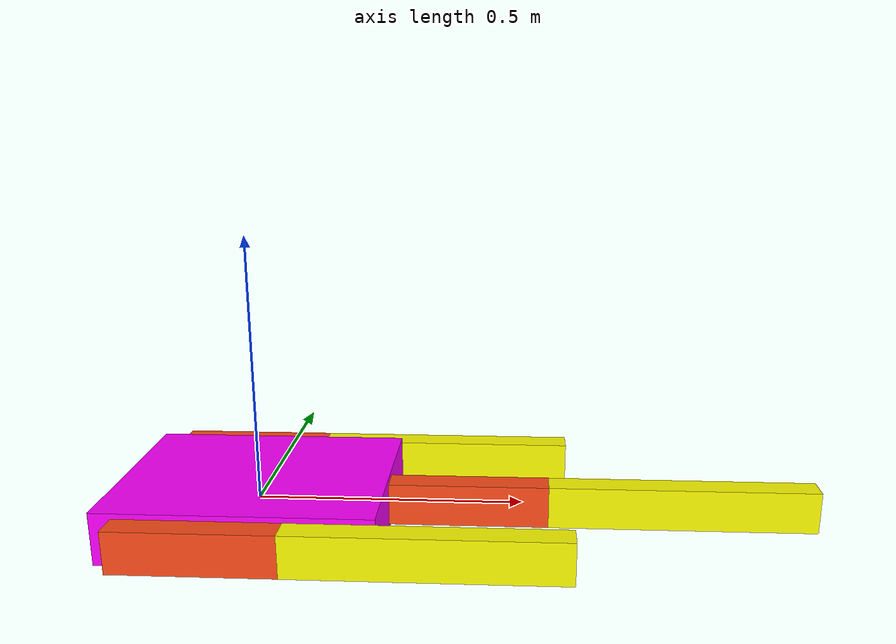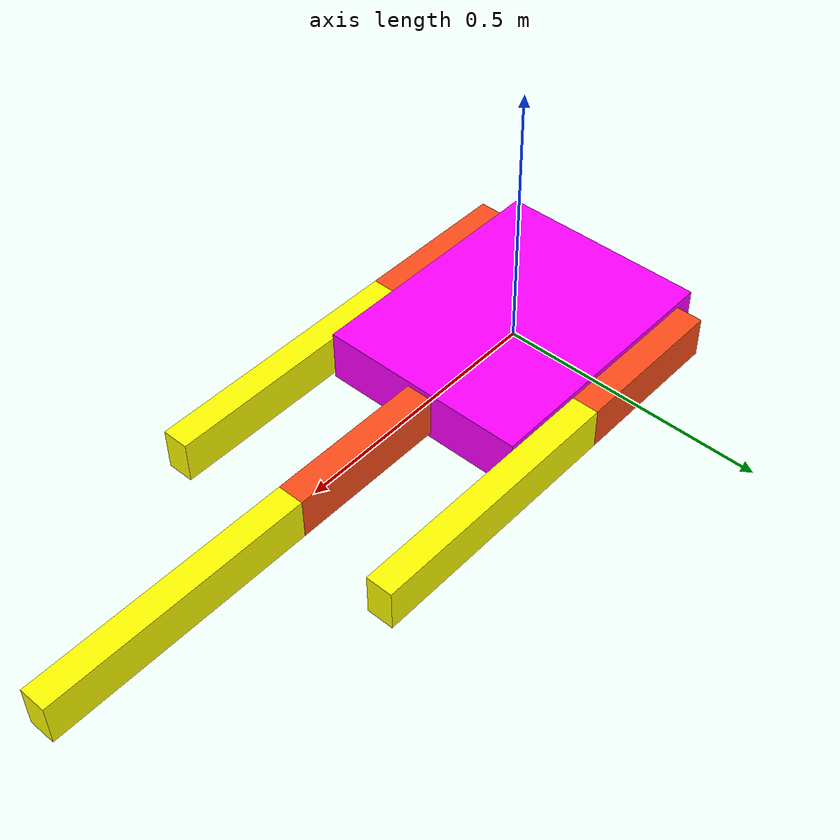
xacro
<?xml version="1.0"?>
<robot xmlns:xacro="http://www.ros.org/wiki/xacro"  name="robot">

<xacro:include filename="materials.xacro" />
<xacro:include filename="inertial_macros.xacro" />
    <!-- base link-->
    <link name="base_link">

    </link>

    <!--main base link-->

    <xacro:include filename="robot_base_square.xacro" />

    <!-- base to chasiis-->
    <joint name="base_link_joint" type="fixed">
        <parent link="base_link"/>
        <child link="main_base_square"/>
        <origin xyz="-0.21 0 0"/>
    </joint>

    <xacro:include filename="robot_legs.xacro" />

    <!-- base to leg 1-->
    <joint name="base_leg1_joint" type="revolute">
        <parent link="main_base_square"/>
        <child link="leg1_1"/>
        <origin xyz="0.46 0 0" rpy="-${pi/2} 0 0"/>
        <limit lower="0" upper="3.14" effort="10" velocity="3"/>
        <axis xyz="0 0 1"/>
    </joint>

        <!-- base to leg 2-->
    <joint name="base_leg2_joint" type="revolute">
        <parent link="main_base_square"/>
        <child link="leg2_1"/>
        <origin xyz="0 0.225 0" rpy="-${pi/2} 0 0"/>
        <limit lower="0" upper="3.14" effort="10" velocity="3"/>
        <axis xyz="0 0 1"/>
    </joint>

        <!-- base to leg 3-->
    <joint name="base_leg3_joint" type="revolute">
        <parent link="main_base_square"/>
        <child link="leg3_1"/>
        <origin xyz="0 -0.225 0" rpy="${pi/2} 0 0"/>
        <limit lower="0" upper="3.14" effort="10" velocity="3"/>
        <axis xyz="0 0 -1"/>
    </joint>

</robot>

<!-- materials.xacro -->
<robot xmlns:xacro="http://www.ros.org/wiki/xacro"  >

  <material name="white">
    <color rgba="1 1 1 1"/>
  </material>

  <material name="black">
    <color rgba="0 0 0 1"/>
  </material>

  <material name="orange">
    <color rgba="1 0.3 0.1 1"/>
  </material>

  <material name="red">
    <color rgba="1 0 0 1"/>
  </material>

  <material name="green">
    <color rgba="0 1 0 1"/>
  </material>

  <material name="blue">
    <color rgba="0 0 1 1"/>
  </material>

  <material name="cyan">
    <color rgba="0 1 1 1"/>
  </material>

  <material name="yellow">
    <color rgba="1 1 0 1"/>
  </material>

  <material name="magenta">
    <color rgba="1 0 1 1"/>
  </material>

</robot>

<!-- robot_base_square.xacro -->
<robot xmlns:xacro="http://www.ros.org/wiki/xacro" >

<link name="main_base_square">
    <visual>
        <origin xyz="0.21 0 0"/>
        <geometry>
            <box size="0.5 0.4 0.1"/>
        </geometry>
        <material name="magenta"/>
    </visual>

    <collision>
        <origin xyz="0.21 0 0"/>
        <geometry>
            <box size="0.5 0.4 0.1"/>
        </geometry>
    </collision>

    <xacro:inertial_box mass="2" x="0.5" y="0.4" z="0.1">
       <origin xyz="0.21 0 0" rpy="0 0 0"/>
    </xacro:inertial_box>
</link>

</robot>

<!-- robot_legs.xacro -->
<robot xmlns:xacro="http://www.ros.org/wiki/xacro" >

<!-- leg 1-->
<link name="leg1_1">
    <visual>
        <origin xyz="0.15 0 0"/>
        <geometry>
            <box size="0.3 0.08 0.05"/>
        </geometry>
        <material name="orange"/>
    </visual>

    <collision>
        <origin xyz="0.15 0 0"/>
        <geometry>
            <box size="0.3 0.08 0.05"/>
        </geometry>
    </collision>

    <xacro:inertial_box mass="0.3" x="0.3" y="0.08" z="0.05">
       <origin xyz="0.15 0 0" rpy="0 0 0"/>
    </xacro:inertial_box>
</link>

<joint name="leg1_joint" type="revolute">
    <parent link="leg1_1"/>
    <child link="leg1_2"/>
    <origin xyz="0.3 0 0"/>
    <limit lower="-1.57" upper="1.57" effort="100" velocity="3"/>
    <axis xyz="0 0 1"/>
</joint>

<link name="leg1_2">
    <visual>
        <origin xyz="0.25 0 0"/>
        <geometry>
            <box size="0.5 0.08 0.05"/>
        </geometry>
        <material name="yellow"/>
    </visual>

    <collision>
        <origin xyz="0.25 0 0"/>
        <geometry>
            <box size="0.5 0.08 0.05"/>
        </geometry>
    </collision>
    <xacro:inertial_box mass="0.5" x="0.5" y="0.08" z="0.05">
       <origin xyz="0.25 0 0" rpy="0 0 0"/>
    </xacro:inertial_box>
</link>

<!-- leg 2-->
<link name="leg2_1">
    <visual>
        <origin xyz="0.15 0 0"/>
        <geometry>
            <box size="0.3 0.08 0.05"/>
        </geometry>
        <material name="orange"/>
    </visual>
    <collision>
        <origin xyz="0.15 0 0"/>
        <geometry>
            <box size="0.3 0.08 0.05"/>
        </geometry>
    </collision>

    <xacro:inertial_box mass="0.3" x="0.3" y="0.08" z="0.05">
       <origin xyz="0.15 0 0" rpy="0 0 0"/>
    </xacro:inertial_box>
</link>

<joint name="leg2_joint" type="revolute">
    <parent link="leg2_1"/>
    <child link="leg2_2"/>
    <origin xyz="0.3 0 0"/>
    <limit lower="-1.57" upper="1.57" effort="100" velocity="3"/>
    <axis xyz="0 0 1"/>
</joint>

<link name="leg2_2">
    <visual>
        <origin xyz="0.25 0 0"/>
        <geometry>
            <box size="0.5 0.08 0.05"/>
        </geometry>
        <material name="yellow"/>
    </visual>
    <collision>
        <origin xyz="0.25 0 0"/>
        <geometry>
            <box size="0.5 0.08 0.05"/>
        </geometry>
    </collision>
    <xacro:inertial_box mass="0.5" x="0.5" y="0.08" z="0.05">
       <origin xyz="0.25 0 0" rpy="0 0 0"/>
    </xacro:inertial_box>
</link>

<!-- leg 3-->
<link name="leg3_1">
    <visual>
        <origin xyz="0.15 0 0"/>
        <geometry>
            <box size="0.3 0.08 0.05"/>
        </geometry>
        <material name="orange"/>
    </visual>
    <collision>
        <origin xyz="0.15 0 0"/>
        <geometry>
            <box size="0.3 0.08 0.05"/>
        </geometry>
    </collision>
    <xacro:inertial_box mass="0.3" x="0.3" y="0.08" z="0.05">
       <origin xyz="0.15 0 0" rpy="0 0 0"/>
    </xacro:inertial_box>
</link>

<joint name="leg3_joint" type="revolute">
    <parent link="leg3_1"/>
    <child link="leg3_2"/>
    <origin xyz="0.3 0 0"/>
    <limit lower="-1.57" upper="1.57" effort="100" velocity="3"/>
    <axis xyz="0 0 1"/>
</joint>

<link name="leg3_2">
    <visual>
        <origin xyz="0.25 0 0"/>
        <geometry>
            <box size="0.5 0.08 0.05"/>
        </geometry>
        <material name="yellow"/>
    </visual>
    <collision>
        <origin xyz="0.25 0 0"/>
        <geometry>
            <box size="0.5 0.08 0.05"/>
        </geometry>
    </collision>
    <xacro:inertial_box mass="0.5" x="0.5" y="0.08" z="0.05">
       <origin xyz="0.25 0 0" rpy="0 0 0"/>
    </xacro:inertial_box>
</link>

</robot>
